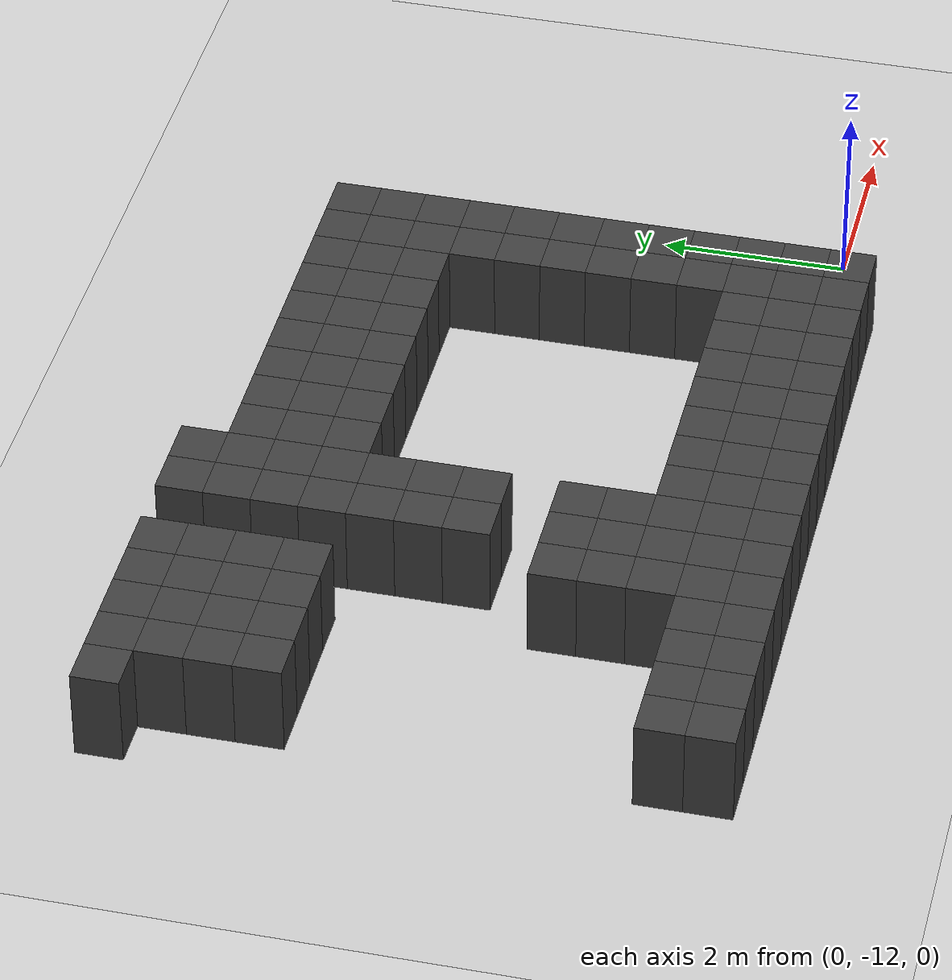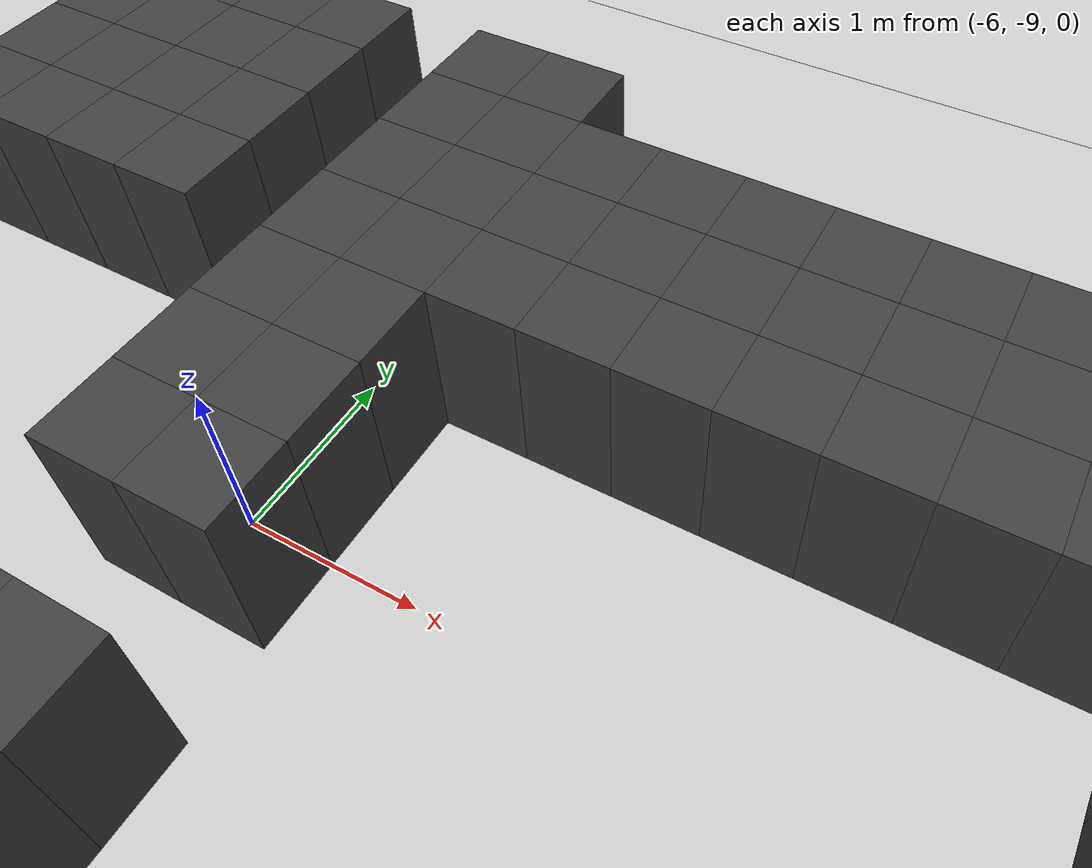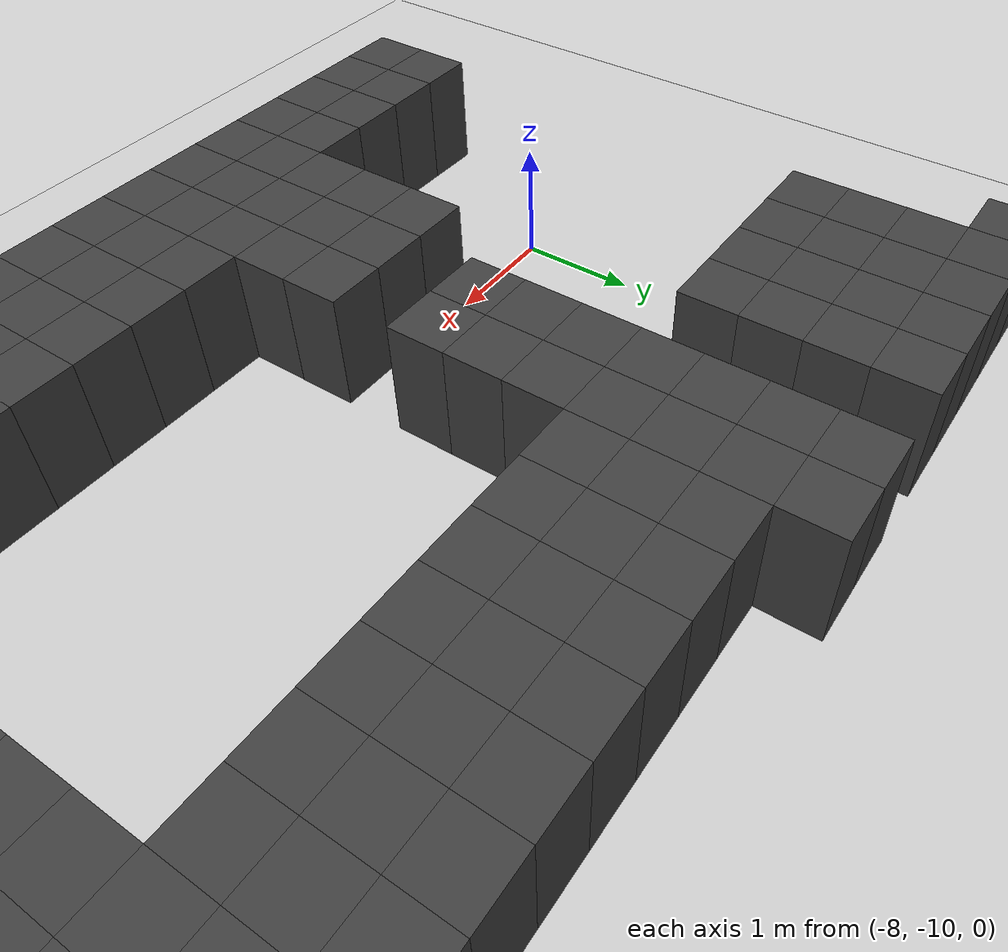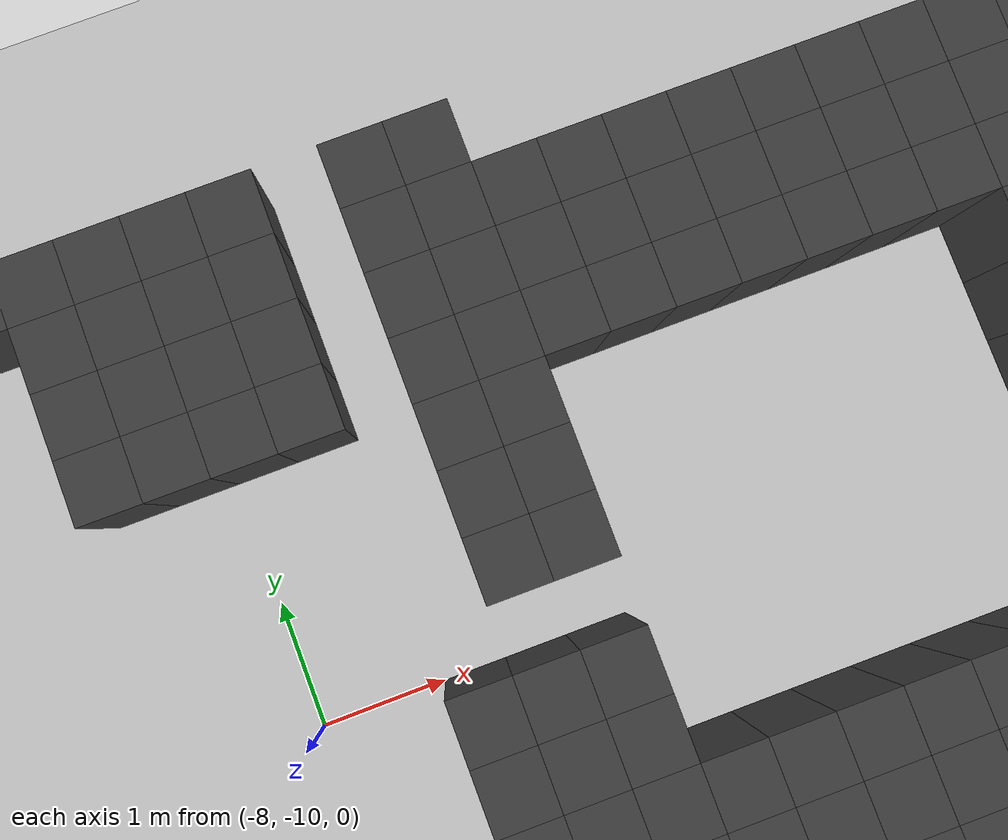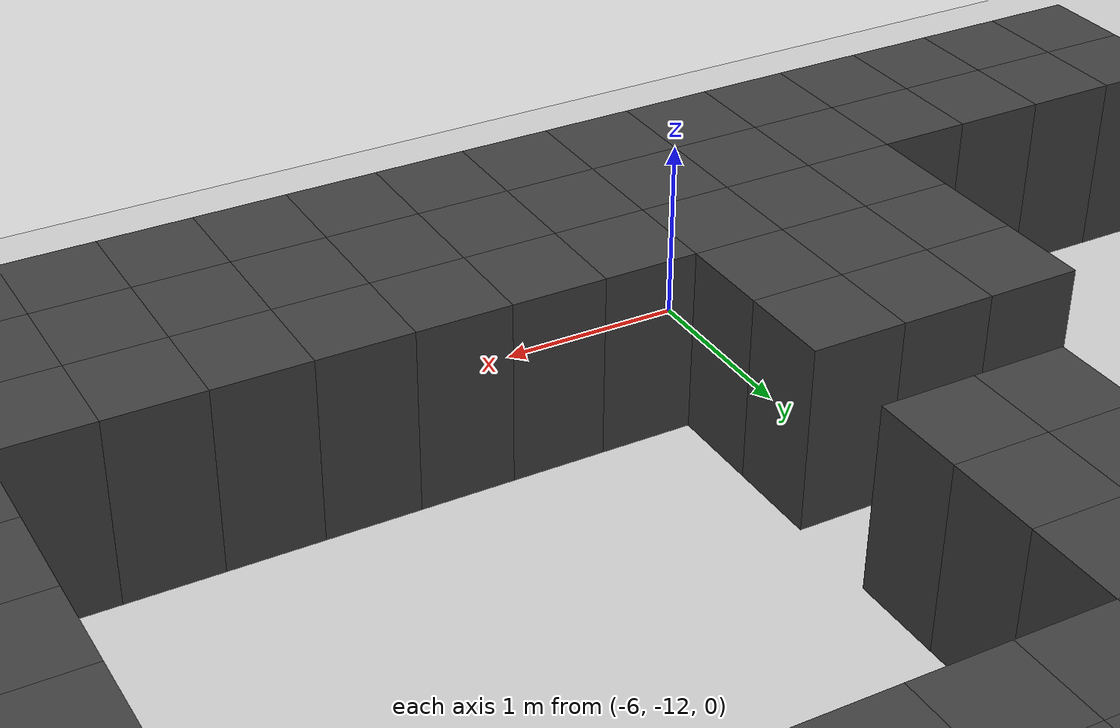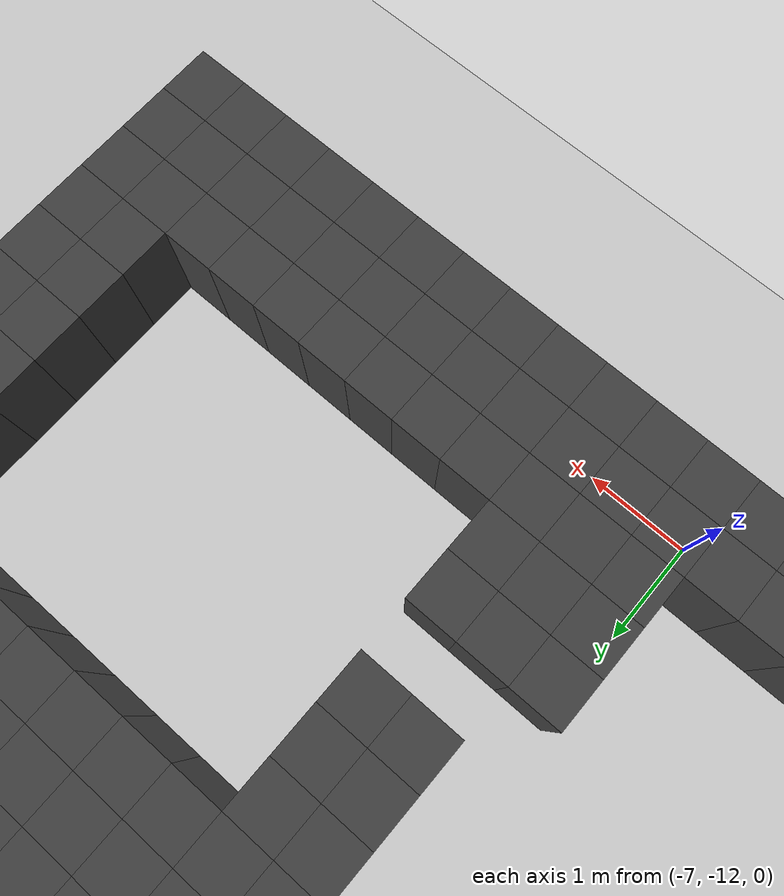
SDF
<sdf version="1.7">
 <world name="map_14706">
  <model name="ground_plane">
   <static>true</static>
   <link name="link">
    <collision name="collision">
     <geometry><plane><normal>0 0 1</normal><size>200 200</size></plane></geometry>
    </collision>
    <visual name="visual">
     <geometry><plane><normal>0 0 1</normal><size>200 200</size></plane></geometry>
     <material><ambient>0.8 0.8 0.8 1</ambient><diffuse>0.8 0.8 0.8 1</diffuse></material>
    </visual>
   </link>
  </model>
  <model name="maze_environment">
   <static>true</static>
   <link name="wall_1312">
    <pose>-9.250 -6.250 0.500 0 0 0</pose>
    <collision name="col"><geometry><box><size>0.5 0.5 1.0</size></box></geometry></collision>
    <visual name="vis">
     <geometry><box><size>0.5 0.5 1.0</size></box></geometry>
     <material><ambient>0.15 0.15 0.15 1</ambient><diffuse>0.25 0.25 0.25 1</diffuse></material>
    </visual>
   </link>
   <link name="wall_1313">
    <pose>-8.750 -6.250 0.500 0 0 0</pose>
    <collision name="col"><geometry><box><size>0.5 0.5 1.0</size></box></geometry></collision>
    <visual name="vis">
     <geometry><box><size>0.5 0.5 1.0</size></box></geometry>
     <material><ambient>0.15 0.15 0.15 1</ambient><diffuse>0.25 0.25 0.25 1</diffuse></material>
    </visual>
   </link>
   <link name="wall_1314">
    <pose>-8.250 -6.250 0.500 0 0 0</pose>
    <collision name="col"><geometry><box><size>0.5 0.5 1.0</size></box></geometry></collision>
    <visual name="vis">
     <geometry><box><size>0.5 0.5 1.0</size></box></geometry>
     <material><ambient>0.15 0.15 0.15 1</ambient><diffuse>0.25 0.25 0.25 1</diffuse></material>
    </visual>
   </link>
   <link name="wall_1315">
    <pose>-7.750 -6.250 0.500 0 0 0</pose>
    <collision name="col"><geometry><box><size>0.5 0.5 1.0</size></box></geometry></collision>
    <visual name="vis">
     <geometry><box><size>0.5 0.5 1.0</size></box></geometry>
     <material><ambient>0.15 0.15 0.15 1</ambient><diffuse>0.25 0.25 0.25 1</diffuse></material>
    </visual>
   </link>
   <link name="wall_1316">
    <pose>-7.250 -6.250 0.500 0 0 0</pose>
    <collision name="col"><geometry><box><size>0.5 0.5 1.0</size></box></geometry></collision>
    <visual name="vis">
     <geometry><box><size>0.5 0.5 1.0</size></box></geometry>
     <material><ambient>0.15 0.15 0.15 1</ambient><diffuse>0.25 0.25 0.25 1</diffuse></material>
    </visual>
   </link>
   <link name="wall_1317">
    <pose>-6.250 -6.250 0.500 0 0 0</pose>
    <collision name="col"><geometry><box><size>0.5 0.5 1.0</size></box></geometry></collision>
    <visual name="vis">
     <geometry><box><size>0.5 0.5 1.0</size></box></geometry>
     <material><ambient>0.15 0.15 0.15 1</ambient><diffuse>0.25 0.25 0.25 1</diffuse></material>
    </visual>
   </link>
   <link name="wall_1318">
    <pose>-5.750 -6.250 0.500 0 0 0</pose>
    <collision name="col"><geometry><box><size>0.5 0.5 1.0</size></box></geometry></collision>
    <visual name="vis">
     <geometry><box><size>0.5 0.5 1.0</size></box></geometry>
     <material><ambient>0.15 0.15 0.15 1</ambient><diffuse>0.25 0.25 0.25 1</diffuse></material>
    </visual>
   </link>
   <link name="wall_1349">
    <pose>-8.750 -6.750 0.500 0 0 0</pose>
    <collision name="col"><geometry><box><size>0.5 0.5 1.0</size></box></geometry></collision>
    <visual name="vis">
     <geometry><box><size>0.5 0.5 1.0</size></box></geometry>
     <material><ambient>0.15 0.15 0.15 1</ambient><diffuse>0.25 0.25 0.25 1</diffuse></material>
    </visual>
   </link>
   <link name="wall_1350">
    <pose>-8.250 -6.750 0.500 0 0 0</pose>
    <collision name="col"><geometry><box><size>0.5 0.5 1.0</size></box></geometry></collision>
    <visual name="vis">
     <geometry><box><size>0.5 0.5 1.0</size></box></geometry>
     <material><ambient>0.15 0.15 0.15 1</ambient><diffuse>0.25 0.25 0.25 1</diffuse></material>
    </visual>
   </link>
   <link name="wall_1351">
    <pose>-7.750 -6.750 0.500 0 0 0</pose>
    <collision name="col"><geometry><box><size>0.5 0.5 1.0</size></box></geometry></collision>
    <visual name="vis">
     <geometry><box><size>0.5 0.5 1.0</size></box></geometry>
     <material><ambient>0.15 0.15 0.15 1</ambient><diffuse>0.25 0.25 0.25 1</diffuse></material>
    </visual>
   </link>
   <link name="wall_1352">
    <pose>-7.250 -6.750 0.500 0 0 0</pose>
    <collision name="col"><geometry><box><size>0.5 0.5 1.0</size></box></geometry></collision>
    <visual name="vis">
     <geometry><box><size>0.5 0.5 1.0</size></box></geometry>
     <material><ambient>0.15 0.15 0.15 1</ambient><diffuse>0.25 0.25 0.25 1</diffuse></material>
    </visual>
   </link>
   <link name="wall_1353">
    <pose>-6.250 -6.750 0.500 0 0 0</pose>
    <collision name="col"><geometry><box><size>0.5 0.5 1.0</size></box></geometry></collision>
    <visual name="vis">
     <geometry><box><size>0.5 0.5 1.0</size></box></geometry>
     <material><ambient>0.15 0.15 0.15 1</ambient><diffuse>0.25 0.25 0.25 1</diffuse></material>
    </visual>
   </link>
   <link name="wall_1354">
    <pose>-5.750 -6.750 0.500 0 0 0</pose>
    <collision name="col"><geometry><box><size>0.5 0.5 1.0</size></box></geometry></collision>
    <visual name="vis">
     <geometry><box><size>0.5 0.5 1.0</size></box></geometry>
     <material><ambient>0.15 0.15 0.15 1</ambient><diffuse>0.25 0.25 0.25 1</diffuse></material>
    </visual>
   </link>
   <link name="wall_1355">
    <pose>-5.250 -6.750 0.500 0 0 0</pose>
    <collision name="col"><geometry><box><size>0.5 0.5 1.0</size></box></geometry></collision>
    <visual name="vis">
     <geometry><box><size>0.5 0.5 1.0</size></box></geometry>
     <material><ambient>0.15 0.15 0.15 1</ambient><diffuse>0.25 0.25 0.25 1</diffuse></material>
    </visual>
   </link>
   <link name="wall_1356">
    <pose>-4.750 -6.750 0.500 0 0 0</pose>
    <collision name="col"><geometry><box><size>0.5 0.5 1.0</size></box></geometry></collision>
    <visual name="vis">
     <geometry><box><size>0.5 0.5 1.0</size></box></geometry>
     <material><ambient>0.15 0.15 0.15 1</ambient><diffuse>0.25 0.25 0.25 1</diffuse></material>
    </visual>
   </link>
   <link name="wall_1357">
    <pose>-4.250 -6.750 0.500 0 0 0</pose>
    <collision name="col"><geometry><box><size>0.5 0.5 1.0</size></box></geometry></collision>
    <visual name="vis">
     <geometry><box><size>0.5 0.5 1.0</size></box></geometry>
     <material><ambient>0.15 0.15 0.15 1</ambient><diffuse>0.25 0.25 0.25 1</diffuse></material>
    </visual>
   </link>
   <link name="wall_1358">
    <pose>-3.750 -6.750 0.500 0 0 0</pose>
    <collision name="col"><geometry><box><size>0.5 0.5 1.0</size></box></geometry></collision>
    <visual name="vis">
     <geometry><box><size>0.5 0.5 1.0</size></box></geometry>
     <material><ambient>0.15 0.15 0.15 1</ambient><diffuse>0.25 0.25 0.25 1</diffuse></material>
    </visual>
   </link>
   <link name="wall_1359">
    <pose>-3.250 -6.750 0.500 0 0 0</pose>
    <collision name="col"><geometry><box><size>0.5 0.5 1.0</size></box></geometry></collision>
    <visual name="vis">
     <geometry><box><size>0.5 0.5 1.0</size></box></geometry>
     <material><ambient>0.15 0.15 0.15 1</ambient><diffuse>0.25 0.25 0.25 1</diffuse></material>
    </visual>
   </link>
   <link name="wall_1360">
    <pose>-2.750 -6.750 0.500 0 0 0</pose>
    <collision name="col"><geometry><box><size>0.5 0.5 1.0</size></box></geometry></collision>
    <visual name="vis">
     <geometry><box><size>0.5 0.5 1.0</size></box></geometry>
     <material><ambient>0.15 0.15 0.15 1</ambient><diffuse>0.25 0.25 0.25 1</diffuse></material>
    </visual>
   </link>
   <link name="wall_1361">
    <pose>-2.250 -6.750 0.500 0 0 0</pose>
    <collision name="col"><geometry><box><size>0.5 0.5 1.0</size></box></geometry></collision>
    <visual name="vis">
     <geometry><box><size>0.5 0.5 1.0</size></box></geometry>
     <material><ambient>0.15 0.15 0.15 1</ambient><diffuse>0.25 0.25 0.25 1</diffuse></material>
    </visual>
   </link>
   <link name="wall_1362">
    <pose>-1.750 -6.750 0.500 0 0 0</pose>
    <collision name="col"><geometry><box><size>0.5 0.5 1.0</size></box></geometry></collision>
    <visual name="vis">
     <geometry><box><size>0.5 0.5 1.0</size></box></geometry>
     <material><ambient>0.15 0.15 0.15 1</ambient><diffuse>0.25 0.25 0.25 1</diffuse></material>
    </visual>
   </link>
   <link name="wall_1363">
    <pose>-1.250 -6.750 0.500 0 0 0</pose>
    <collision name="col"><geometry><box><size>0.5 0.5 1.0</size></box></geometry></collision>
    <visual name="vis">
     <geometry><box><size>0.5 0.5 1.0</size></box></geometry>
     <material><ambient>0.15 0.15 0.15 1</ambient><diffuse>0.25 0.25 0.25 1</diffuse></material>
    </visual>
   </link>
   <link name="wall_1391">
    <pose>-8.750 -7.250 0.500 0 0 0</pose>
    <collision name="col"><geometry><box><size>0.5 0.5 1.0</size></box></geometry></collision>
    <visual name="vis">
     <geometry><box><size>0.5 0.5 1.0</size></box></geometry>
     <material><ambient>0.15 0.15 0.15 1</ambient><diffuse>0.25 0.25 0.25 1</diffuse></material>
    </visual>
   </link>
   <link name="wall_1392">
    <pose>-8.250 -7.250 0.500 0 0 0</pose>
    <collision name="col"><geometry><box><size>0.5 0.5 1.0</size></box></geometry></collision>
    <visual name="vis">
     <geometry><box><size>0.5 0.5 1.0</size></box></geometry>
     <material><ambient>0.15 0.15 0.15 1</ambient><diffuse>0.25 0.25 0.25 1</diffuse></material>
    </visual>
   </link>
   <link name="wall_1393">
    <pose>-7.750 -7.250 0.500 0 0 0</pose>
    <collision name="col"><geometry><box><size>0.5 0.5 1.0</size></box></geometry></collision>
    <visual name="vis">
     <geometry><box><size>0.5 0.5 1.0</size></box></geometry>
     <material><ambient>0.15 0.15 0.15 1</ambient><diffuse>0.25 0.25 0.25 1</diffuse></material>
    </visual>
   </link>
   <link name="wall_1394">
    <pose>-7.250 -7.250 0.500 0 0 0</pose>
    <collision name="col"><geometry><box><size>0.5 0.5 1.0</size></box></geometry></collision>
    <visual name="vis">
     <geometry><box><size>0.5 0.5 1.0</size></box></geometry>
     <material><ambient>0.15 0.15 0.15 1</ambient><diffuse>0.25 0.25 0.25 1</diffuse></material>
    </visual>
   </link>
   <link name="wall_1395">
    <pose>-6.250 -7.250 0.500 0 0 0</pose>
    <collision name="col"><geometry><box><size>0.5 0.5 1.0</size></box></geometry></collision>
    <visual name="vis">
     <geometry><box><size>0.5 0.5 1.0</size></box></geometry>
     <material><ambient>0.15 0.15 0.15 1</ambient><diffuse>0.25 0.25 0.25 1</diffuse></material>
    </visual>
   </link>
   <link name="wall_1396">
    <pose>-5.750 -7.250 0.500 0 0 0</pose>
    <collision name="col"><geometry><box><size>0.5 0.5 1.0</size></box></geometry></collision>
    <visual name="vis">
     <geometry><box><size>0.5 0.5 1.0</size></box></geometry>
     <material><ambient>0.15 0.15 0.15 1</ambient><diffuse>0.25 0.25 0.25 1</diffuse></material>
    </visual>
   </link>
   <link name="wall_1397">
    <pose>-5.250 -7.250 0.500 0 0 0</pose>
    <collision name="col"><geometry><box><size>0.5 0.5 1.0</size></box></geometry></collision>
    <visual name="vis">
     <geometry><box><size>0.5 0.5 1.0</size></box></geometry>
     <material><ambient>0.15 0.15 0.15 1</ambient><diffuse>0.25 0.25 0.25 1</diffuse></material>
    </visual>
   </link>
   <link name="wall_1398">
    <pose>-4.750 -7.250 0.500 0 0 0</pose>
    <collision name="col"><geometry><box><size>0.5 0.5 1.0</size></box></geometry></collision>
    <visual name="vis">
     <geometry><box><size>0.5 0.5 1.0</size></box></geometry>
     <material><ambient>0.15 0.15 0.15 1</ambient><diffuse>0.25 0.25 0.25 1</diffuse></material>
    </visual>
   </link>
   <link name="wall_1399">
    <pose>-4.250 -7.250 0.500 0 0 0</pose>
    <collision name="col"><geometry><box><size>0.5 0.5 1.0</size></box></geometry></collision>
    <visual name="vis">
     <geometry><box><size>0.5 0.5 1.0</size></box></geometry>
     <material><ambient>0.15 0.15 0.15 1</ambient><diffuse>0.25 0.25 0.25 1</diffuse></material>
    </visual>
   </link>
   <link name="wall_1400">
    <pose>-3.750 -7.250 0.500 0 0 0</pose>
    <collision name="col"><geometry><box><size>0.5 0.5 1.0</size></box></geometry></collision>
    <visual name="vis">
     <geometry><box><size>0.5 0.5 1.0</size></box></geometry>
     <material><ambient>0.15 0.15 0.15 1</ambient><diffuse>0.25 0.25 0.25 1</diffuse></material>
    </visual>
   </link>
   <link name="wall_1401">
    <pose>-3.250 -7.250 0.500 0 0 0</pose>
    <collision name="col"><geometry><box><size>0.5 0.5 1.0</size></box></geometry></collision>
    <visual name="vis">
     <geometry><box><size>0.5 0.5 1.0</size></box></geometry>
     <material><ambient>0.15 0.15 0.15 1</ambient><diffuse>0.25 0.25 0.25 1</diffuse></material>
    </visual>
   </link>
   <link name="wall_1402">
    <pose>-2.750 -7.250 0.500 0 0 0</pose>
    <collision name="col"><geometry><box><size>0.5 0.5 1.0</size></box></geometry></collision>
    <visual name="vis">
     <geometry><box><size>0.5 0.5 1.0</size></box></geometry>
     <material><ambient>0.15 0.15 0.15 1</ambient><diffuse>0.25 0.25 0.25 1</diffuse></material>
    </visual>
   </link>
   <link name="wall_1403">
    <pose>-2.250 -7.250 0.500 0 0 0</pose>
    <collision name="col"><geometry><box><size>0.5 0.5 1.0</size></box></geometry></collision>
    <visual name="vis">
     <geometry><box><size>0.5 0.5 1.0</size></box></geometry>
     <material><ambient>0.15 0.15 0.15 1</ambient><diffuse>0.25 0.25 0.25 1</diffuse></material>
    </visual>
   </link>
   <link name="wall_1404">
    <pose>-1.750 -7.250 0.500 0 0 0</pose>
    <collision name="col"><geometry><box><size>0.5 0.5 1.0</size></box></geometry></collision>
    <visual name="vis">
     <geometry><box><size>0.5 0.5 1.0</size></box></geometry>
     <material><ambient>0.15 0.15 0.15 1</ambient><diffuse>0.25 0.25 0.25 1</diffuse></material>
    </visual>
   </link>
   <link name="wall_1405">
    <pose>-1.250 -7.250 0.500 0 0 0</pose>
    <collision name="col"><geometry><box><size>0.5 0.5 1.0</size></box></geometry></collision>
    <visual name="vis">
     <geometry><box><size>0.5 0.5 1.0</size></box></geometry>
     <material><ambient>0.15 0.15 0.15 1</ambient><diffuse>0.25 0.25 0.25 1</diffuse></material>
    </visual>
   </link>
   <link name="wall_1433">
    <pose>-8.750 -7.750 0.500 0 0 0</pose>
    <collision name="col"><geometry><box><size>0.5 0.5 1.0</size></box></geometry></collision>
    <visual name="vis">
     <geometry><box><size>0.5 0.5 1.0</size></box></geometry>
     <material><ambient>0.15 0.15 0.15 1</ambient><diffuse>0.25 0.25 0.25 1</diffuse></material>
    </visual>
   </link>
   <link name="wall_1434">
    <pose>-8.250 -7.750 0.500 0 0 0</pose>
    <collision name="col"><geometry><box><size>0.5 0.5 1.0</size></box></geometry></collision>
    <visual name="vis">
     <geometry><box><size>0.5 0.5 1.0</size></box></geometry>
     <material><ambient>0.15 0.15 0.15 1</ambient><diffuse>0.25 0.25 0.25 1</diffuse></material>
    </visual>
   </link>
   <link name="wall_1435">
    <pose>-7.750 -7.750 0.500 0 0 0</pose>
    <collision name="col"><geometry><box><size>0.5 0.5 1.0</size></box></geometry></collision>
    <visual name="vis">
     <geometry><box><size>0.5 0.5 1.0</size></box></geometry>
     <material><ambient>0.15 0.15 0.15 1</ambient><diffuse>0.25 0.25 0.25 1</diffuse></material>
    </visual>
   </link>
   <link name="wall_1436">
    <pose>-7.250 -7.750 0.500 0 0 0</pose>
    <collision name="col"><geometry><box><size>0.5 0.5 1.0</size></box></geometry></collision>
    <visual name="vis">
     <geometry><box><size>0.5 0.5 1.0</size></box></geometry>
     <material><ambient>0.15 0.15 0.15 1</ambient><diffuse>0.25 0.25 0.25 1</diffuse></material>
    </visual>
   </link>
   <link name="wall_1437">
    <pose>-6.250 -7.750 0.500 0 0 0</pose>
    <collision name="col"><geometry><box><size>0.5 0.5 1.0</size></box></geometry></collision>
    <visual name="vis">
     <geometry><box><size>0.5 0.5 1.0</size></box></geometry>
     <material><ambient>0.15 0.15 0.15 1</ambient><diffuse>0.25 0.25 0.25 1</diffuse></material>
    </visual>
   </link>
   <link name="wall_1438">
    <pose>-5.750 -7.750 0.500 0 0 0</pose>
    <collision name="col"><geometry><box><size>0.5 0.5 1.0</size></box></geometry></collision>
    <visual name="vis">
     <geometry><box><size>0.5 0.5 1.0</size></box></geometry>
     <material><ambient>0.15 0.15 0.15 1</ambient><diffuse>0.25 0.25 0.25 1</diffuse></material>
    </visual>
   </link>
   <link name="wall_1439">
    <pose>-5.250 -7.750 0.500 0 0 0</pose>
    <collision name="col"><geometry><box><size>0.5 0.5 1.0</size></box></geometry></collision>
    <visual name="vis">
     <geometry><box><size>0.5 0.5 1.0</size></box></geometry>
     <material><ambient>0.15 0.15 0.15 1</ambient><diffuse>0.25 0.25 0.25 1</diffuse></material>
    </visual>
   </link>
   <link name="wall_1440">
    <pose>-4.750 -7.750 0.500 0 0 0</pose>
    <collision name="col"><geometry><box><size>0.5 0.5 1.0</size></box></geometry></collision>
    <visual name="vis">
     <geometry><box><size>0.5 0.5 1.0</size></box></geometry>
     <material><ambient>0.15 0.15 0.15 1</ambient><diffuse>0.25 0.25 0.25 1</diffuse></material>
    </visual>
   </link>
   <link name="wall_1441">
    <pose>-4.250 -7.750 0.500 0 0 0</pose>
    <collision name="col"><geometry><box><size>0.5 0.5 1.0</size></box></geometry></collision>
    <visual name="vis">
     <geometry><box><size>0.5 0.5 1.0</size></box></geometry>
     <material><ambient>0.15 0.15 0.15 1</ambient><diffuse>0.25 0.25 0.25 1</diffuse></material>
    </visual>
   </link>
   <link name="wall_1442">
    <pose>-3.750 -7.750 0.500 0 0 0</pose>
    <collision name="col"><geometry><box><size>0.5 0.5 1.0</size></box></geometry></collision>
    <visual name="vis">
     <geometry><box><size>0.5 0.5 1.0</size></box></geometry>
     <material><ambient>0.15 0.15 0.15 1</ambient><diffuse>0.25 0.25 0.25 1</diffuse></material>
    </visual>
   </link>
   <link name="wall_1443">
    <pose>-3.250 -7.750 0.500 0 0 0</pose>
    <collision name="col"><geometry><box><size>0.5 0.5 1.0</size></box></geometry></collision>
    <visual name="vis">
     <geometry><box><size>0.5 0.5 1.0</size></box></geometry>
     <material><ambient>0.15 0.15 0.15 1</ambient><diffuse>0.25 0.25 0.25 1</diffuse></material>
    </visual>
   </link>
   <link name="wall_1444">
    <pose>-2.750 -7.750 0.500 0 0 0</pose>
    <collision name="col"><geometry><box><size>0.5 0.5 1.0</size></box></geometry></collision>
    <visual name="vis">
     <geometry><box><size>0.5 0.5 1.0</size></box></geometry>
     <material><ambient>0.15 0.15 0.15 1</ambient><diffuse>0.25 0.25 0.25 1</diffuse></material>
    </visual>
   </link>
   <link name="wall_1445">
    <pose>-2.250 -7.750 0.500 0 0 0</pose>
    <collision name="col"><geometry><box><size>0.5 0.5 1.0</size></box></geometry></collision>
    <visual name="vis">
     <geometry><box><size>0.5 0.5 1.0</size></box></geometry>
     <material><ambient>0.15 0.15 0.15 1</ambient><diffuse>0.25 0.25 0.25 1</diffuse></material>
    </visual>
   </link>
   <link name="wall_1446">
    <pose>-1.750 -7.750 0.500 0 0 0</pose>
    <collision name="col"><geometry><box><size>0.5 0.5 1.0</size></box></geometry></collision>
    <visual name="vis">
     <geometry><box><size>0.5 0.5 1.0</size></box></geometry>
     <material><ambient>0.15 0.15 0.15 1</ambient><diffuse>0.25 0.25 0.25 1</diffuse></material>
    </visual>
   </link>
   <link name="wall_1447">
    <pose>-1.250 -7.750 0.500 0 0 0</pose>
    <collision name="col"><geometry><box><size>0.5 0.5 1.0</size></box></geometry></collision>
    <visual name="vis">
     <geometry><box><size>0.5 0.5 1.0</size></box></geometry>
     <material><ambient>0.15 0.15 0.15 1</ambient><diffuse>0.25 0.25 0.25 1</diffuse></material>
    </visual>
   </link>
   <link name="wall_1479">
    <pose>-6.250 -8.250 0.500 0 0 0</pose>
    <collision name="col"><geometry><box><size>0.5 0.5 1.0</size></box></geometry></collision>
    <visual name="vis">
     <geometry><box><size>0.5 0.5 1.0</size></box></geometry>
     <material><ambient>0.15 0.15 0.15 1</ambient><diffuse>0.25 0.25 0.25 1</diffuse></material>
    </visual>
   </link>
   <link name="wall_1480">
    <pose>-5.750 -8.250 0.500 0 0 0</pose>
    <collision name="col"><geometry><box><size>0.5 0.5 1.0</size></box></geometry></collision>
    <visual name="vis">
     <geometry><box><size>0.5 0.5 1.0</size></box></geometry>
     <material><ambient>0.15 0.15 0.15 1</ambient><diffuse>0.25 0.25 0.25 1</diffuse></material>
    </visual>
   </link>
   <link name="wall_1481">
    <pose>-1.750 -8.250 0.500 0 0 0</pose>
    <collision name="col"><geometry><box><size>0.5 0.5 1.0</size></box></geometry></collision>
    <visual name="vis">
     <geometry><box><size>0.5 0.5 1.0</size></box></geometry>
     <material><ambient>0.15 0.15 0.15 1</ambient><diffuse>0.25 0.25 0.25 1</diffuse></material>
    </visual>
   </link>
   <link name="wall_1482">
    <pose>-1.250 -8.250 0.500 0 0 0</pose>
    <collision name="col"><geometry><box><size>0.5 0.5 1.0</size></box></geometry></collision>
    <visual name="vis">
     <geometry><box><size>0.5 0.5 1.0</size></box></geometry>
     <material><ambient>0.15 0.15 0.15 1</ambient><diffuse>0.25 0.25 0.25 1</diffuse></material>
    </visual>
   </link>
   <link name="wall_1514">
    <pose>-6.250 -8.750 0.500 0 0 0</pose>
    <collision name="col"><geometry><box><size>0.5 0.5 1.0</size></box></geometry></collision>
    <visual name="vis">
     <geometry><box><size>0.5 0.5 1.0</size></box></geometry>
     <material><ambient>0.15 0.15 0.15 1</ambient><diffuse>0.25 0.25 0.25 1</diffuse></material>
    </visual>
   </link>
   <link name="wall_1515">
    <pose>-5.750 -8.750 0.500 0 0 0</pose>
    <collision name="col"><geometry><box><size>0.5 0.5 1.0</size></box></geometry></collision>
    <visual name="vis">
     <geometry><box><size>0.5 0.5 1.0</size></box></geometry>
     <material><ambient>0.15 0.15 0.15 1</ambient><diffuse>0.25 0.25 0.25 1</diffuse></material>
    </visual>
   </link>
   <link name="wall_1516">
    <pose>-1.750 -8.750 0.500 0 0 0</pose>
    <collision name="col"><geometry><box><size>0.5 0.5 1.0</size></box></geometry></collision>
    <visual name="vis">
     <geometry><box><size>0.5 0.5 1.0</size></box></geometry>
     <material><ambient>0.15 0.15 0.15 1</ambient><diffuse>0.25 0.25 0.25 1</diffuse></material>
    </visual>
   </link>
   <link name="wall_1517">
    <pose>-1.250 -8.750 0.500 0 0 0</pose>
    <collision name="col"><geometry><box><size>0.5 0.5 1.0</size></box></geometry></collision>
    <visual name="vis">
     <geometry><box><size>0.5 0.5 1.0</size></box></geometry>
     <material><ambient>0.15 0.15 0.15 1</ambient><diffuse>0.25 0.25 0.25 1</diffuse></material>
    </visual>
   </link>
   <link name="wall_1549">
    <pose>-6.250 -9.250 0.500 0 0 0</pose>
    <collision name="col"><geometry><box><size>0.5 0.5 1.0</size></box></geometry></collision>
    <visual name="vis">
     <geometry><box><size>0.5 0.5 1.0</size></box></geometry>
     <material><ambient>0.15 0.15 0.15 1</ambient><diffuse>0.25 0.25 0.25 1</diffuse></material>
    </visual>
   </link>
   <link name="wall_1550">
    <pose>-5.750 -9.250 0.500 0 0 0</pose>
    <collision name="col"><geometry><box><size>0.5 0.5 1.0</size></box></geometry></collision>
    <visual name="vis">
     <geometry><box><size>0.5 0.5 1.0</size></box></geometry>
     <material><ambient>0.15 0.15 0.15 1</ambient><diffuse>0.25 0.25 0.25 1</diffuse></material>
    </visual>
   </link>
   <link name="wall_1551">
    <pose>-1.750 -9.250 0.500 0 0 0</pose>
    <collision name="col"><geometry><box><size>0.5 0.5 1.0</size></box></geometry></collision>
    <visual name="vis">
     <geometry><box><size>0.5 0.5 1.0</size></box></geometry>
     <material><ambient>0.15 0.15 0.15 1</ambient><diffuse>0.25 0.25 0.25 1</diffuse></material>
    </visual>
   </link>
   <link name="wall_1552">
    <pose>-1.250 -9.250 0.500 0 0 0</pose>
    <collision name="col"><geometry><box><size>0.5 0.5 1.0</size></box></geometry></collision>
    <visual name="vis">
     <geometry><box><size>0.5 0.5 1.0</size></box></geometry>
     <material><ambient>0.15 0.15 0.15 1</ambient><diffuse>0.25 0.25 0.25 1</diffuse></material>
    </visual>
   </link>
   <link name="wall_1584">
    <pose>-1.750 -9.750 0.500 0 0 0</pose>
    <collision name="col"><geometry><box><size>0.5 0.5 1.0</size></box></geometry></collision>
    <visual name="vis">
     <geometry><box><size>0.5 0.5 1.0</size></box></geometry>
     <material><ambient>0.15 0.15 0.15 1</ambient><diffuse>0.25 0.25 0.25 1</diffuse></material>
    </visual>
   </link>
   <link name="wall_1585">
    <pose>-1.250 -9.750 0.500 0 0 0</pose>
    <collision name="col"><geometry><box><size>0.5 0.5 1.0</size></box></geometry></collision>
    <visual name="vis">
     <geometry><box><size>0.5 0.5 1.0</size></box></geometry>
     <material><ambient>0.15 0.15 0.15 1</ambient><diffuse>0.25 0.25 0.25 1</diffuse></material>
    </visual>
   </link>
   <link name="wall_1617">
    <pose>-6.750 -10.250 0.500 0 0 0</pose>
    <collision name="col"><geometry><box><size>0.5 0.5 1.0</size></box></geometry></collision>
    <visual name="vis">
     <geometry><box><size>0.5 0.5 1.0</size></box></geometry>
     <material><ambient>0.15 0.15 0.15 1</ambient><diffuse>0.25 0.25 0.25 1</diffuse></material>
    </visual>
   </link>
   <link name="wall_1618">
    <pose>-6.250 -10.250 0.500 0 0 0</pose>
    <collision name="col"><geometry><box><size>0.5 0.5 1.0</size></box></geometry></collision>
    <visual name="vis">
     <geometry><box><size>0.5 0.5 1.0</size></box></geometry>
     <material><ambient>0.15 0.15 0.15 1</ambient><diffuse>0.25 0.25 0.25 1</diffuse></material>
    </visual>
   </link>
   <link name="wall_1619">
    <pose>-5.750 -10.250 0.500 0 0 0</pose>
    <collision name="col"><geometry><box><size>0.5 0.5 1.0</size></box></geometry></collision>
    <visual name="vis">
     <geometry><box><size>0.5 0.5 1.0</size></box></geometry>
     <material><ambient>0.15 0.15 0.15 1</ambient><diffuse>0.25 0.25 0.25 1</diffuse></material>
    </visual>
   </link>
   <link name="wall_1620">
    <pose>-1.750 -10.250 0.500 0 0 0</pose>
    <collision name="col"><geometry><box><size>0.5 0.5 1.0</size></box></geometry></collision>
    <visual name="vis">
     <geometry><box><size>0.5 0.5 1.0</size></box></geometry>
     <material><ambient>0.15 0.15 0.15 1</ambient><diffuse>0.25 0.25 0.25 1</diffuse></material>
    </visual>
   </link>
   <link name="wall_1621">
    <pose>-1.250 -10.250 0.500 0 0 0</pose>
    <collision name="col"><geometry><box><size>0.5 0.5 1.0</size></box></geometry></collision>
    <visual name="vis">
     <geometry><box><size>0.5 0.5 1.0</size></box></geometry>
     <material><ambient>0.15 0.15 0.15 1</ambient><diffuse>0.25 0.25 0.25 1</diffuse></material>
    </visual>
   </link>
   <link name="wall_1653">
    <pose>-6.750 -10.750 0.500 0 0 0</pose>
    <collision name="col"><geometry><box><size>0.5 0.5 1.0</size></box></geometry></collision>
    <visual name="vis">
     <geometry><box><size>0.5 0.5 1.0</size></box></geometry>
     <material><ambient>0.15 0.15 0.15 1</ambient><diffuse>0.25 0.25 0.25 1</diffuse></material>
    </visual>
   </link>
   <link name="wall_1654">
    <pose>-6.250 -10.750 0.500 0 0 0</pose>
    <collision name="col"><geometry><box><size>0.5 0.5 1.0</size></box></geometry></collision>
    <visual name="vis">
     <geometry><box><size>0.5 0.5 1.0</size></box></geometry>
     <material><ambient>0.15 0.15 0.15 1</ambient><diffuse>0.25 0.25 0.25 1</diffuse></material>
    </visual>
   </link>
   <link name="wall_1655">
    <pose>-5.750 -10.750 0.500 0 0 0</pose>
    <collision name="col"><geometry><box><size>0.5 0.5 1.0</size></box></geometry></collision>
    <visual name="vis">
     <geometry><box><size>0.5 0.5 1.0</size></box></geometry>
     <material><ambient>0.15 0.15 0.15 1</ambient><diffuse>0.25 0.25 0.25 1</diffuse></material>
    </visual>
   </link>
   <link name="wall_1656">
    <pose>-1.750 -10.750 0.500 0 0 0</pose>
    <collision name="col"><geometry><box><size>0.5 0.5 1.0</size></box></geometry></collision>
    <visual name="vis">
     <geometry><box><size>0.5 0.5 1.0</size></box></geometry>
     <material><ambient>0.15 0.15 0.15 1</ambient><diffuse>0.25 0.25 0.25 1</diffuse></material>
    </visual>
   </link>
   <link name="wall_1657">
    <pose>-1.250 -10.750 0.500 0 0 0</pose>
    <collision name="col"><geometry><box><size>0.5 0.5 1.0</size></box></geometry></collision>
    <visual name="vis">
     <geometry><box><size>0.5 0.5 1.0</size></box></geometry>
     <material><ambient>0.15 0.15 0.15 1</ambient><diffuse>0.25 0.25 0.25 1</diffuse></material>
    </visual>
   </link>
   <link name="wall_1686">
    <pose>-6.750 -11.250 0.500 0 0 0</pose>
    <collision name="col"><geometry><box><size>0.5 0.5 1.0</size></box></geometry></collision>
    <visual name="vis">
     <geometry><box><size>0.5 0.5 1.0</size></box></geometry>
     <material><ambient>0.15 0.15 0.15 1</ambient><diffuse>0.25 0.25 0.25 1</diffuse></material>
    </visual>
   </link>
   <link name="wall_1687">
    <pose>-6.250 -11.250 0.500 0 0 0</pose>
    <collision name="col"><geometry><box><size>0.5 0.5 1.0</size></box></geometry></collision>
    <visual name="vis">
     <geometry><box><size>0.5 0.5 1.0</size></box></geometry>
     <material><ambient>0.15 0.15 0.15 1</ambient><diffuse>0.25 0.25 0.25 1</diffuse></material>
    </visual>
   </link>
   <link name="wall_1688">
    <pose>-5.750 -11.250 0.500 0 0 0</pose>
    <collision name="col"><geometry><box><size>0.5 0.5 1.0</size></box></geometry></collision>
    <visual name="vis">
     <geometry><box><size>0.5 0.5 1.0</size></box></geometry>
     <material><ambient>0.15 0.15 0.15 1</ambient><diffuse>0.25 0.25 0.25 1</diffuse></material>
    </visual>
   </link>
   <link name="wall_1689">
    <pose>-5.250 -11.250 0.500 0 0 0</pose>
    <collision name="col"><geometry><box><size>0.5 0.5 1.0</size></box></geometry></collision>
    <visual name="vis">
     <geometry><box><size>0.5 0.5 1.0</size></box></geometry>
     <material><ambient>0.15 0.15 0.15 1</ambient><diffuse>0.25 0.25 0.25 1</diffuse></material>
    </visual>
   </link>
   <link name="wall_1690">
    <pose>-4.750 -11.250 0.500 0 0 0</pose>
    <collision name="col"><geometry><box><size>0.5 0.5 1.0</size></box></geometry></collision>
    <visual name="vis">
     <geometry><box><size>0.5 0.5 1.0</size></box></geometry>
     <material><ambient>0.15 0.15 0.15 1</ambient><diffuse>0.25 0.25 0.25 1</diffuse></material>
    </visual>
   </link>
   <link name="wall_1691">
    <pose>-4.250 -11.250 0.500 0 0 0</pose>
    <collision name="col"><geometry><box><size>0.5 0.5 1.0</size></box></geometry></collision>
    <visual name="vis">
     <geometry><box><size>0.5 0.5 1.0</size></box></geometry>
     <material><ambient>0.15 0.15 0.15 1</ambient><diffuse>0.25 0.25 0.25 1</diffuse></material>
    </visual>
   </link>
   <link name="wall_1692">
    <pose>-3.750 -11.250 0.500 0 0 0</pose>
    <collision name="col"><geometry><box><size>0.5 0.5 1.0</size></box></geometry></collision>
    <visual name="vis">
     <geometry><box><size>0.5 0.5 1.0</size></box></geometry>
     <material><ambient>0.15 0.15 0.15 1</ambient><diffuse>0.25 0.25 0.25 1</diffuse></material>
    </visual>
   </link>
   <link name="wall_1693">
    <pose>-3.250 -11.250 0.500 0 0 0</pose>
    <collision name="col"><geometry><box><size>0.5 0.5 1.0</size></box></geometry></collision>
    <visual name="vis">
     <geometry><box><size>0.5 0.5 1.0</size></box></geometry>
     <material><ambient>0.15 0.15 0.15 1</ambient><diffuse>0.25 0.25 0.25 1</diffuse></material>
    </visual>
   </link>
   <link name="wall_1694">
    <pose>-2.750 -11.250 0.500 0 0 0</pose>
    <collision name="col"><geometry><box><size>0.5 0.5 1.0</size></box></geometry></collision>
    <visual name="vis">
     <geometry><box><size>0.5 0.5 1.0</size></box></geometry>
     <material><ambient>0.15 0.15 0.15 1</ambient><diffuse>0.25 0.25 0.25 1</diffuse></material>
    </visual>
   </link>
   <link name="wall_1695">
    <pose>-2.250 -11.250 0.500 0 0 0</pose>
    <collision name="col"><geometry><box><size>0.5 0.5 1.0</size></box></geometry></collision>
    <visual name="vis">
     <geometry><box><size>0.5 0.5 1.0</size></box></geometry>
     <material><ambient>0.15 0.15 0.15 1</ambient><diffuse>0.25 0.25 0.25 1</diffuse></material>
    </visual>
   </link>
   <link name="wall_1696">
    <pose>-1.750 -11.250 0.500 0 0 0</pose>
    <collision name="col"><geometry><box><size>0.5 0.5 1.0</size></box></geometry></collision>
    <visual name="vis">
     <geometry><box><size>0.5 0.5 1.0</size></box></geometry>
     <material><ambient>0.15 0.15 0.15 1</ambient><diffuse>0.25 0.25 0.25 1</diffuse></material>
    </visual>
   </link>
   <link name="wall_1697">
    <pose>-1.250 -11.250 0.500 0 0 0</pose>
    <collision name="col"><geometry><box><size>0.5 0.5 1.0</size></box></geometry></collision>
    <visual name="vis">
     <geometry><box><size>0.5 0.5 1.0</size></box></geometry>
     <material><ambient>0.15 0.15 0.15 1</ambient><diffuse>0.25 0.25 0.25 1</diffuse></material>
    </visual>
   </link>
   <link name="wall_1724">
    <pose>-8.750 -11.750 0.500 0 0 0</pose>
    <collision name="col"><geometry><box><size>0.5 0.5 1.0</size></box></geometry></collision>
    <visual name="vis">
     <geometry><box><size>0.5 0.5 1.0</size></box></geometry>
     <material><ambient>0.15 0.15 0.15 1</ambient><diffuse>0.25 0.25 0.25 1</diffuse></material>
    </visual>
   </link>
   <link name="wall_1725">
    <pose>-8.250 -11.750 0.500 0 0 0</pose>
    <collision name="col"><geometry><box><size>0.5 0.5 1.0</size></box></geometry></collision>
    <visual name="vis">
     <geometry><box><size>0.5 0.5 1.0</size></box></geometry>
     <material><ambient>0.15 0.15 0.15 1</ambient><diffuse>0.25 0.25 0.25 1</diffuse></material>
    </visual>
   </link>
   <link name="wall_1726">
    <pose>-7.750 -11.750 0.500 0 0 0</pose>
    <collision name="col"><geometry><box><size>0.5 0.5 1.0</size></box></geometry></collision>
    <visual name="vis">
     <geometry><box><size>0.5 0.5 1.0</size></box></geometry>
     <material><ambient>0.15 0.15 0.15 1</ambient><diffuse>0.25 0.25 0.25 1</diffuse></material>
    </visual>
   </link>
   <link name="wall_1727">
    <pose>-7.250 -11.750 0.500 0 0 0</pose>
    <collision name="col"><geometry><box><size>0.5 0.5 1.0</size></box></geometry></collision>
    <visual name="vis">
     <geometry><box><size>0.5 0.5 1.0</size></box></geometry>
     <material><ambient>0.15 0.15 0.15 1</ambient><diffuse>0.25 0.25 0.25 1</diffuse></material>
    </visual>
   </link>
   <link name="wall_1728">
    <pose>-6.750 -11.750 0.500 0 0 0</pose>
    <collision name="col"><geometry><box><size>0.5 0.5 1.0</size></box></geometry></collision>
    <visual name="vis">
     <geometry><box><size>0.5 0.5 1.0</size></box></geometry>
     <material><ambient>0.15 0.15 0.15 1</ambient><diffuse>0.25 0.25 0.25 1</diffuse></material>
    </visual>
   </link>
   <link name="wall_1729">
    <pose>-6.250 -11.750 0.500 0 0 0</pose>
    <collision name="col"><geometry><box><size>0.5 0.5 1.0</size></box></geometry></collision>
    <visual name="vis">
     <geometry><box><size>0.5 0.5 1.0</size></box></geometry>
     <material><ambient>0.15 0.15 0.15 1</ambient><diffuse>0.25 0.25 0.25 1</diffuse></material>
    </visual>
   </link>
   <link name="wall_1730">
    <pose>-5.750 -11.750 0.500 0 0 0</pose>
    <collision name="col"><geometry><box><size>0.5 0.5 1.0</size></box></geometry></collision>
    <visual name="vis">
     <geometry><box><size>0.5 0.5 1.0</size></box></geometry>
     <material><ambient>0.15 0.15 0.15 1</ambient><diffuse>0.25 0.25 0.25 1</diffuse></material>
    </visual>
   </link>
   <link name="wall_1731">
    <pose>-5.250 -11.750 0.500 0 0 0</pose>
    <collision name="col"><geometry><box><size>0.5 0.5 1.0</size></box></geometry></collision>
    <visual name="vis">
     <geometry><box><size>0.5 0.5 1.0</size></box></geometry>
     <material><ambient>0.15 0.15 0.15 1</ambient><diffuse>0.25 0.25 0.25 1</diffuse></material>
    </visual>
   </link>
   <link name="wall_1732">
    <pose>-4.750 -11.750 0.500 0 0 0</pose>
    <collision name="col"><geometry><box><size>0.5 0.5 1.0</size></box></geometry></collision>
    <visual name="vis">
     <geometry><box><size>0.5 0.5 1.0</size></box></geometry>
     <material><ambient>0.15 0.15 0.15 1</ambient><diffuse>0.25 0.25 0.25 1</diffuse></material>
    </visual>
   </link>
   <link name="wall_1733">
    <pose>-4.250 -11.750 0.500 0 0 0</pose>
    <collision name="col"><geometry><box><size>0.5 0.5 1.0</size></box></geometry></collision>
    <visual name="vis">
     <geometry><box><size>0.5 0.5 1.0</size></box></geometry>
     <material><ambient>0.15 0.15 0.15 1</ambient><diffuse>0.25 0.25 0.25 1</diffuse></material>
    </visual>
   </link>
   <link name="wall_1734">
    <pose>-3.750 -11.750 0.500 0 0 0</pose>
    <collision name="col"><geometry><box><size>0.5 0.5 1.0</size></box></geometry></collision>
    <visual name="vis">
     <geometry><box><size>0.5 0.5 1.0</size></box></geometry>
     <material><ambient>0.15 0.15 0.15 1</ambient><diffuse>0.25 0.25 0.25 1</diffuse></material>
    </visual>
   </link>
   <link name="wall_1735">
    <pose>-3.250 -11.750 0.500 0 0 0</pose>
    <collision name="col"><geometry><box><size>0.5 0.5 1.0</size></box></geometry></collision>
    <visual name="vis">
     <geometry><box><size>0.5 0.5 1.0</size></box></geometry>
     <material><ambient>0.15 0.15 0.15 1</ambient><diffuse>0.25 0.25 0.25 1</diffuse></material>
    </visual>
   </link>
   <link name="wall_1736">
    <pose>-2.750 -11.750 0.500 0 0 0</pose>
    <collision name="col"><geometry><box><size>0.5 0.5 1.0</size></box></geometry></collision>
    <visual name="vis">
     <geometry><box><size>0.5 0.5 1.0</size></box></geometry>
     <material><ambient>0.15 0.15 0.15 1</ambient><diffuse>0.25 0.25 0.25 1</diffuse></material>
    </visual>
   </link>
   <link name="wall_1737">
    <pose>-2.250 -11.750 0.500 0 0 0</pose>
    <collision name="col"><geometry><box><size>0.5 0.5 1.0</size></box></geometry></collision>
    <visual name="vis">
     <geometry><box><size>0.5 0.5 1.0</size></box></geometry>
     <material><ambient>0.15 0.15 0.15 1</ambient><diffuse>0.25 0.25 0.25 1</diffuse></material>
    </visual>
   </link>
   <link name="wall_1738">
    <pose>-1.750 -11.750 0.500 0 0 0</pose>
    <collision name="col"><geometry><box><size>0.5 0.5 1.0</size></box></geometry></collision>
    <visual name="vis">
     <geometry><box><size>0.5 0.5 1.0</size></box></geometry>
     <material><ambient>0.15 0.15 0.15 1</ambient><diffuse>0.25 0.25 0.25 1</diffuse></material>
    </visual>
   </link>
   <link name="wall_1739">
    <pose>-1.250 -11.750 0.500 0 0 0</pose>
    <collision name="col"><geometry><box><size>0.5 0.5 1.0</size></box></geometry></collision>
    <visual name="vis">
     <geometry><box><size>0.5 0.5 1.0</size></box></geometry>
     <material><ambient>0.15 0.15 0.15 1</ambient><diffuse>0.25 0.25 0.25 1</diffuse></material>
    </visual>
   </link>
   <link name="wall_1771">
    <pose>-8.750 -12.250 0.500 0 0 0</pose>
    <collision name="col"><geometry><box><size>0.5 0.5 1.0</size></box></geometry></collision>
    <visual name="vis">
     <geometry><box><size>0.5 0.5 1.0</size></box></geometry>
     <material><ambient>0.15 0.15 0.15 1</ambient><diffuse>0.25 0.25 0.25 1</diffuse></material>
    </visual>
   </link>
   <link name="wall_1772">
    <pose>-8.250 -12.250 0.500 0 0 0</pose>
    <collision name="col"><geometry><box><size>0.5 0.5 1.0</size></box></geometry></collision>
    <visual name="vis">
     <geometry><box><size>0.5 0.5 1.0</size></box></geometry>
     <material><ambient>0.15 0.15 0.15 1</ambient><diffuse>0.25 0.25 0.25 1</diffuse></material>
    </visual>
   </link>
   <link name="wall_1773">
    <pose>-7.750 -12.250 0.500 0 0 0</pose>
    <collision name="col"><geometry><box><size>0.5 0.5 1.0</size></box></geometry></collision>
    <visual name="vis">
     <geometry><box><size>0.5 0.5 1.0</size></box></geometry>
     <material><ambient>0.15 0.15 0.15 1</ambient><diffuse>0.25 0.25 0.25 1</diffuse></material>
    </visual>
   </link>
   <link name="wall_1774">
    <pose>-7.250 -12.250 0.500 0 0 0</pose>
    <collision name="col"><geometry><box><size>0.5 0.5 1.0</size></box></geometry></collision>
    <visual name="vis">
     <geometry><box><size>0.5 0.5 1.0</size></box></geometry>
     <material><ambient>0.15 0.15 0.15 1</ambient><diffuse>0.25 0.25 0.25 1</diffuse></material>
    </visual>
   </link>
   <link name="wall_1775">
    <pose>-6.750 -12.250 0.500 0 0 0</pose>
    <collision name="col"><geometry><box><size>0.5 0.5 1.0</size></box></geometry></collision>
    <visual name="vis">
     <geometry><box><size>0.5 0.5 1.0</size></box></geometry>
     <material><ambient>0.15 0.15 0.15 1</ambient><diffuse>0.25 0.25 0.25 1</diffuse></material>
    </visual>
   </link>
   <link name="wall_1776">
    <pose>-6.250 -12.250 0.500 0 0 0</pose>
    <collision name="col"><geometry><box><size>0.5 0.5 1.0</size></box></geometry></collision>
    <visual name="vis">
     <geometry><box><size>0.5 0.5 1.0</size></box></geometry>
     <material><ambient>0.15 0.15 0.15 1</ambient><diffuse>0.25 0.25 0.25 1</diffuse></material>
    </visual>
   </link>
   <link name="wall_1777">
    <pose>-5.750 -12.250 0.500 0 0 0</pose>
    <collision name="col"><geometry><box><size>0.5 0.5 1.0</size></box></geometry></collision>
    <visual name="vis">
     <geometry><box><size>0.5 0.5 1.0</size></box></geometry>
     <material><ambient>0.15 0.15 0.15 1</ambient><diffuse>0.25 0.25 0.25 1</diffuse></material>
    </visual>
   </link>
   <link name="wall_1778">
    <pose>-5.250 -12.250 0.500 0 0 0</pose>
    <collision name="col"><geometry><box><size>0.5 0.5 1.0</size></box></geometry></collision>
    <visual name="vis">
     <geometry><box><size>0.5 0.5 1.0</size></box></geometry>
     <material><ambient>0.15 0.15 0.15 1</ambient><diffuse>0.25 0.25 0.25 1</diffuse></material>
    </visual>
   </link>
   <link name="wall_1779">
    <pose>-4.750 -12.250 0.500 0 0 0</pose>
    <collision name="col"><geometry><box><size>0.5 0.5 1.0</size></box></geometry></collision>
    <visual name="vis">
     <geometry><box><size>0.5 0.5 1.0</size></box></geometry>
     <material><ambient>0.15 0.15 0.15 1</ambient><diffuse>0.25 0.25 0.25 1</diffuse></material>
    </visual>
   </link>
   <link name="wall_1780">
    <pose>-4.250 -12.250 0.500 0 0 0</pose>
    <collision name="col"><geometry><box><size>0.5 0.5 1.0</size></box></geometry></collision>
    <visual name="vis">
     <geometry><box><size>0.5 0.5 1.0</size></box></geometry>
     <material><ambient>0.15 0.15 0.15 1</ambient><diffuse>0.25 0.25 0.25 1</diffuse></material>
    </visual>
   </link>
   <link name="wall_1781">
    <pose>-3.750 -12.250 0.500 0 0 0</pose>
    <collision name="col"><geometry><box><size>0.5 0.5 1.0</size></box></geometry></collision>
    <visual name="vis">
     <geometry><box><size>0.5 0.5 1.0</size></box></geometry>
     <material><ambient>0.15 0.15 0.15 1</ambient><diffuse>0.25 0.25 0.25 1</diffuse></material>
    </visual>
   </link>
   <link name="wall_1782">
    <pose>-3.250 -12.250 0.500 0 0 0</pose>
    <collision name="col"><geometry><box><size>0.5 0.5 1.0</size></box></geometry></collision>
    <visual name="vis">
     <geometry><box><size>0.5 0.5 1.0</size></box></geometry>
     <material><ambient>0.15 0.15 0.15 1</ambient><diffuse>0.25 0.25 0.25 1</diffuse></material>
    </visual>
   </link>
   <link name="wall_1783">
    <pose>-2.750 -12.250 0.500 0 0 0</pose>
    <collision name="col"><geometry><box><size>0.5 0.5 1.0</size></box></geometry></collision>
    <visual name="vis">
     <geometry><box><size>0.5 0.5 1.0</size></box></geometry>
     <material><ambient>0.15 0.15 0.15 1</ambient><diffuse>0.25 0.25 0.25 1</diffuse></material>
    </visual>
   </link>
   <link name="wall_1784">
    <pose>-2.250 -12.250 0.500 0 0 0</pose>
    <collision name="col"><geometry><box><size>0.5 0.5 1.0</size></box></geometry></collision>
    <visual name="vis">
     <geometry><box><size>0.5 0.5 1.0</size></box></geometry>
     <material><ambient>0.15 0.15 0.15 1</ambient><diffuse>0.25 0.25 0.25 1</diffuse></material>
    </visual>
   </link>
   <link name="wall_1785">
    <pose>-1.750 -12.250 0.500 0 0 0</pose>
    <collision name="col"><geometry><box><size>0.5 0.5 1.0</size></box></geometry></collision>
    <visual name="vis">
     <geometry><box><size>0.5 0.5 1.0</size></box></geometry>
     <material><ambient>0.15 0.15 0.15 1</ambient><diffuse>0.25 0.25 0.25 1</diffuse></material>
    </visual>
   </link>
   <link name="wall_1786">
    <pose>-1.250 -12.250 0.500 0 0 0</pose>
    <collision name="col"><geometry><box><size>0.5 0.5 1.0</size></box></geometry></collision>
    <visual name="vis">
     <geometry><box><size>0.5 0.5 1.0</size></box></geometry>
     <material><ambient>0.15 0.15 0.15 1</ambient><diffuse>0.25 0.25 0.25 1</diffuse></material>
    </visual>
   </link>
  </model>
 </world>
</sdf>
